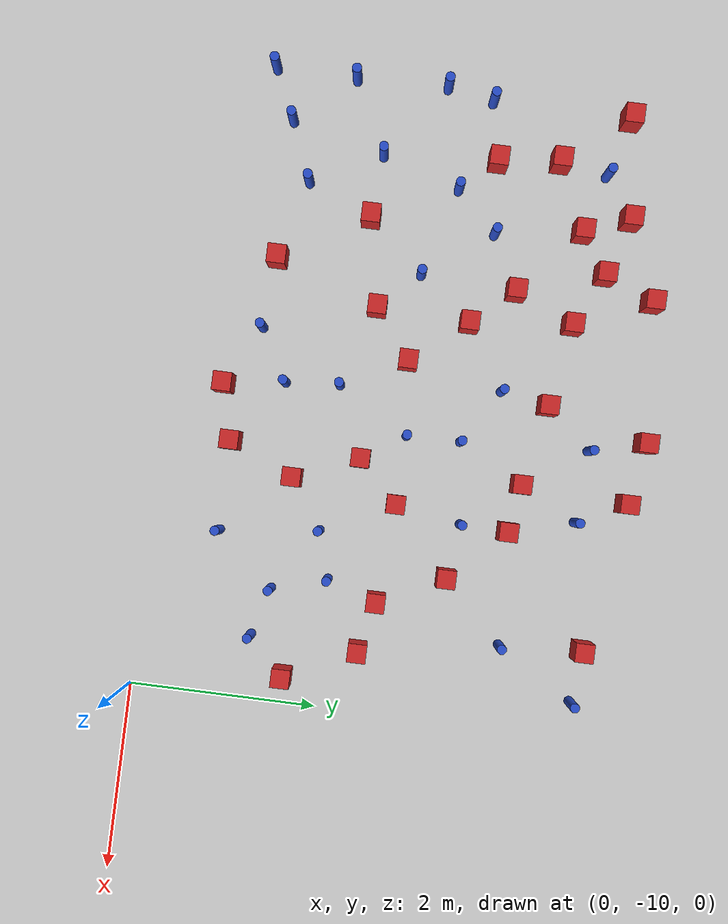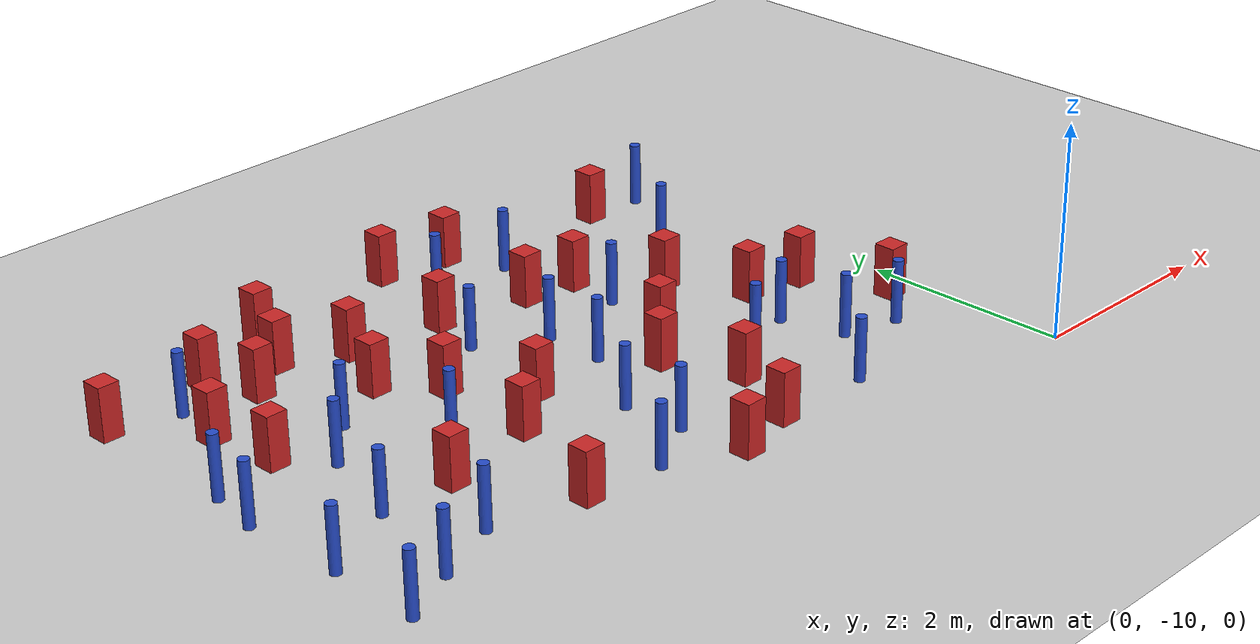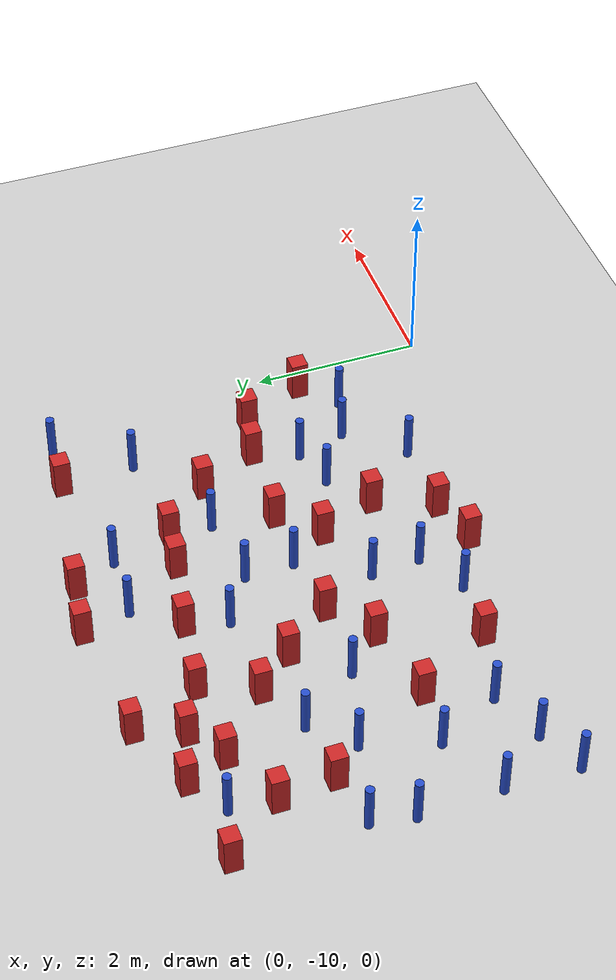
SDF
<sdf version="1.6">
 <world name="default">
  <model name="ground_plane">
   <static>1</static>
   <link name="link">
    <collision name="collision">
     <geometry><plane><normal>0 0 1</normal><size>100 100</size></plane></geometry>
     <surface><friction><ode><mu>100</mu><mu2>50</mu2></ode></friction></surface>
    </collision>
    <visual name="visual">
     <cast_shadows>0</cast_shadows>
     <geometry><plane><normal>0 0 1</normal><size>100 100</size></plane></geometry>
     <material>
      <ambient>1.0 1.0 1.0 1.0</ambient>
      <diffuse>0.8 0.8 0.8 1.0</diffuse>
      <specular>0.01 0.01 0.01 1.000000</specular>
     </material>
    </visual>
   </link>
  </model>
  <model name="square_post_obstacle0">
   <static>true</static>
   <pose>-0.304805739064 -8.38422856579 1.91545236811e-07 -7.35059704564e-06 1.12565212e-07 2.39332434364e-05</pose>
   <link name="link">
    <pose>0 0 0.25 0 -0 0</pose>
    <inertial>
     <mass>100</mass>
     <inertia>
      <ixx>0.166667</ixx>
      <ixy>0</ixy>
      <ixz>0</ixz>
      <iyy>0.166667</iyy>
      <iyz>0</iyz>
      <izz>0.166667</izz>
     </inertia>
    </inertial>
    <collision name="collision"><geometry><box><size>.2 .2 .5</size></box></geometry></collision>
    <visual name="visual">
     <geometry><box><size>.2 .2 .5</size></box></geometry>
     <material>
      <script><name>Gazebo/Red</name><uri>file://media/materials/scripts/gazebo.material</uri></script>
     </material>
    </visual>
   </link>
  </model>
  <model name="pole_obstacle5">
   <static>true</static>
   <pose>-1.21229855243 -8.62259796271 7.38925637345e-09 -8.47170692798e-08 1.24976764881e-08 -1.74513093027e-07</pose>
   <link name="link">
    <pose>0 0 0.3 0 -0 0</pose>
    <inertial>
     <mass>1</mass>
     <inertia><ixx>0.145833</ixx><ixy>0</ixy><ixz>0</ixz><iyy>0.145833</iyy><iyz>0</iyz><izz>0.125</izz></inertia>
    </inertial>
    <collision name="collision">
     <geometry><cylinder><radius>0.05</radius><length>.6</length></cylinder></geometry>
    </collision>
    <visual name="visual">
     <geometry><cylinder><radius>0.05</radius><length>.6</length></cylinder></geometry>
     <material>
      <script><name>Gazebo/Blue</name><uri>file://media/materials/scripts/gazebo.material</uri></script>
     </material>
    </visual>
   </link>
  </model>
  <model name="pole_obstacle8">
   <static>true</static>
   <pose>-1.38622224824 -8.02949995866 7.38925637345e-09 -8.47170692794e-08 1.24976764551e-08 -1.74513093044e-07</pose>
   <link name="link">
    <pose>0 0 0.3 0 -0 0</pose>
    <inertial>
     <mass>1</mass>
     <inertia><ixx>0.145833</ixx><ixy>0</ixy><ixz>0</ixz><iyy>0.145833</iyy><iyz>0</iyz><izz>0.125</izz></inertia>
    </inertial>
    <collision name="collision">
     <geometry><cylinder><radius>0.05</radius><length>.6</length></cylinder></geometry>
    </collision>
    <visual name="visual">
     <geometry><cylinder><radius>0.05</radius><length>.6</length></cylinder></geometry>
     <material>
      <script><name>Gazebo/Blue</name><uri>file://media/materials/scripts/gazebo.material</uri></script>
     </material>
    </visual>
   </link>
  </model>
  <model name="square_post_obstacle17">
   <static>true</static>
   <pose>-3.32777596773 -9.38484346378 1.91545236811e-07 -7.35059704564e-06 1.12565212e-07 2.39332434364e-05</pose>
   <link name="link">
    <pose>0 0 0.25 0 -0 0</pose>
    <inertial>
     <mass>100</mass>
     <inertia>
      <ixx>0.166667</ixx>
      <ixy>0</ixy>
      <ixz>0</ixz>
      <iyy>0.166667</iyy>
      <iyz>0</iyz>
      <izz>0.166667</izz>
     </inertia>
    </inertial>
    <collision name="collision"><geometry><box><size>.2 .2 .5</size></box></geometry></collision>
    <visual name="visual">
     <geometry><box><size>.2 .2 .5</size></box></geometry>
     <material>
      <script><name>Gazebo/Red</name><uri>file://media/materials/scripts/gazebo.material</uri></script>
     </material>
    </visual>
   </link>
  </model>
  <model name="pole_obstacle34">
   <static>true</static>
   <pose>-3.02314006411 -6.80403830484 7.38925637345e-09 -8.47170692798e-08 1.24976765033e-08 -1.74513093019e-07</pose>
   <link name="link">
    <pose>0 0 0.3 0 -0 0</pose>
    <inertial>
     <mass>1</mass>
     <inertia><ixx>0.145833</ixx><ixy>0</ixy><ixz>0</ixz><iyy>0.145833</iyy><iyz>0</iyz><izz>0.125</izz></inertia>
    </inertial>
    <collision name="collision">
     <geometry><cylinder><radius>0.05</radius><length>.6</length></cylinder></geometry>
    </collision>
    <visual name="visual">
     <geometry><cylinder><radius>0.05</radius><length>.6</length></cylinder></geometry>
     <material>
      <script><name>Gazebo/Blue</name><uri>file://media/materials/scripts/gazebo.material</uri></script>
     </material>
    </visual>
   </link>
  </model>
  <model name="square_post_obstacle29">
   <static>true</static>
   <pose>-6.1205498209 -6.12049402709 1.91545236811e-07 -7.35059704564e-06 1.12565212e-07 2.39332434364e-05</pose>
   <link name="link">
    <pose>0 0 0.25 0 -0 0</pose>
    <inertial>
     <mass>100</mass>
     <inertia>
      <ixx>0.166667</ixx>
      <ixy>0</ixy>
      <ixz>0</ixz>
      <iyy>0.166667</iyy>
      <iyz>0</iyz>
      <izz>0.166667</izz>
     </inertia>
    </inertial>
    <collision name="collision"><geometry><box><size>.2 .2 .5</size></box></geometry></collision>
    <visual name="visual">
     <geometry><box><size>.2 .2 .5</size></box></geometry>
     <material>
      <script><name>Gazebo/Red</name><uri>file://media/materials/scripts/gazebo.material</uri></script>
     </material>
    </visual>
   </link>
  </model>
  <model name="pole_obstacle41">
   <static>true</static>
   <pose>-6.20837072922 -9.00901409024 7.38925637345e-09 -8.471706928e-08 1.24976765081e-08 -1.74513093015e-07</pose>
   <link name="link">
    <pose>0 0 0.3 0 -0 0</pose>
    <inertial>
     <mass>1</mass>
     <inertia><ixx>0.145833</ixx><ixy>0</ixy><ixz>0</ixz><iyy>0.145833</iyy><iyz>0</iyz><izz>0.125</izz></inertia>
    </inertial>
    <collision name="collision">
     <geometry><cylinder><radius>0.05</radius><length>.6</length></cylinder></geometry>
    </collision>
    <visual name="visual">
     <geometry><cylinder><radius>0.05</radius><length>.6</length></cylinder></geometry>
     <material>
      <script><name>Gazebo/Blue</name><uri>file://media/materials/scripts/gazebo.material</uri></script>
     </material>
    </visual>
   </link>
  </model>
  <model name="square_post_obstacle34">
   <static>true</static>
   <pose>-4.69075412494 -6.42369297707 1.91545236811e-07 -7.35059704564e-06 1.12565212e-07 2.39332434364e-05</pose>
   <link name="link">
    <pose>0 0 0.25 0 -0 0</pose>
    <inertial>
     <mass>100</mass>
     <inertia>
      <ixx>0.166667</ixx>
      <ixy>0</ixy>
      <ixz>0</ixz>
      <iyy>0.166667</iyy>
      <iyz>0</iyz>
      <izz>0.166667</izz>
     </inertia>
    </inertial>
    <collision name="collision"><geometry><box><size>.2 .2 .5</size></box></geometry></collision>
    <visual name="visual">
     <geometry><box><size>.2 .2 .5</size></box></geometry>
     <material>
      <script><name>Gazebo/Red</name><uri>file://media/materials/scripts/gazebo.material</uri></script>
     </material>
    </visual>
   </link>
  </model>
  <model name="pole_obstacle57">
   <static>true</static>
   <pose>-6.67726402432 -6.90838742449 7.38925637345e-09 -8.47170692796e-08 1.24976764786e-08 -1.74513093032e-07</pose>
   <link name="link">
    <pose>0 0 0.3 0 -0 0</pose>
    <inertial>
     <mass>1</mass>
     <inertia><ixx>0.145833</ixx><ixy>0</ixy><ixz>0</ixz><iyy>0.145833</iyy><iyz>0</iyz><izz>0.125</izz></inertia>
    </inertial>
    <collision name="collision">
     <geometry><cylinder><radius>0.05</radius><length>.6</length></cylinder></geometry>
    </collision>
    <visual name="visual">
     <geometry><cylinder><radius>0.05</radius><length>.6</length></cylinder></geometry>
     <material>
      <script><name>Gazebo/Blue</name><uri>file://media/materials/scripts/gazebo.material</uri></script>
     </material>
    </visual>
   </link>
  </model>
  <model name="square_post_obstacle44">
   <static>true</static>
   <pose>-1.55913039652 -6.78206130796 1.91545236811e-07 -7.35059704564e-06 1.12565212e-07 2.39332434364e-05</pose>
   <link name="link">
    <pose>0 0 0.25 0 -0 0</pose>
    <inertial>
     <mass>100</mass>
     <inertia>
      <ixx>0.166667</ixx>
      <ixy>0</ixy>
      <ixz>0</ixz>
      <iyy>0.166667</iyy>
      <iyz>0</iyz>
      <izz>0.166667</izz>
     </inertia>
    </inertial>
    <collision name="collision"><geometry><box><size>.2 .2 .5</size></box></geometry></collision>
    <visual name="visual">
     <geometry><box><size>.2 .2 .5</size></box></geometry>
     <material>
      <script><name>Gazebo/Red</name><uri>file://media/materials/scripts/gazebo.material</uri></script>
     </material>
    </visual>
   </link>
  </model>
  <model name="square_post_obstacle46">
   <static>true</static>
   <pose>-4.2921654583 -6.87408539935 1.91545236811e-07 -7.35059704564e-06 1.12565212e-07 2.39332434364e-05</pose>
   <link name="link">
    <pose>0 0 0.25 0 -0 0</pose>
    <inertial>
     <mass>100</mass>
     <inertia>
      <ixx>0.166667</ixx>
      <ixy>0</ixy>
      <ixz>0</ixz>
      <iyy>0.166667</iyy>
      <iyz>0</iyz>
      <izz>0.166667</izz>
     </inertia>
    </inertial>
    <collision name="collision"><geometry><box><size>.2 .2 .5</size></box></geometry></collision>
    <visual name="visual">
     <geometry><box><size>.2 .2 .5</size></box></geometry>
     <material>
      <script><name>Gazebo/Red</name><uri>file://media/materials/scripts/gazebo.material</uri></script>
     </material>
    </visual>
   </link>
  </model>
  <model name="pole_obstacle64">
   <static>true</static>
   <pose>-3.01185786647 -7.38417080821 7.38925637345e-09 -8.47170692794e-08 1.24976764468e-08 -1.7451309304e-07</pose>
   <link name="link">
    <pose>0 0 0.3 0 -0 0</pose>
    <inertial>
     <mass>1</mass>
     <inertia><ixx>0.145833</ixx><ixy>0</ixy><ixz>0</ixz><iyy>0.145833</iyy><iyz>0</iyz><izz>0.125</izz></inertia>
    </inertial>
    <collision name="collision">
     <geometry><cylinder><radius>0.05</radius><length>.6</length></cylinder></geometry>
    </collision>
    <visual name="visual">
     <geometry><cylinder><radius>0.05</radius><length>.6</length></cylinder></geometry>
     <material>
      <script><name>Gazebo/Blue</name><uri>file://media/materials/scripts/gazebo.material</uri></script>
     </material>
    </visual>
   </link>
  </model>
  <model name="pole_obstacle65">
   <static>true</static>
   <pose>-4.74315457048 -7.44499683405 7.38925637345e-09 -8.47170692796e-08 1.24976764786e-08 -1.74513093032e-07</pose>
   <link name="link">
    <pose>0 0 0.3 0 -0 0</pose>
    <inertial>
     <mass>1</mass>
     <inertia><ixx>0.145833</ixx><ixy>0</ixy><ixz>0</ixz><iyy>0.145833</iyy><iyz>0</iyz><izz>0.125</izz></inertia>
    </inertial>
    <collision name="collision">
     <geometry><cylinder><radius>0.05</radius><length>.6</length></cylinder></geometry>
    </collision>
    <visual name="visual">
     <geometry><cylinder><radius>0.05</radius><length>.6</length></cylinder></geometry>
     <material>
      <script><name>Gazebo/Blue</name><uri>file://media/materials/scripts/gazebo.material</uri></script>
     </material>
    </visual>
   </link>
  </model>
  <model name="square_post_obstacle56">
   <static>true</static>
   <pose>-4.40652172445 -5.78115040071 1.91545236811e-07 -7.35059704564e-06 1.12565212e-07 2.39332434364e-05</pose>
   <link name="link">
    <pose>0 0 0.25 0 -0 0</pose>
    <inertial>
     <mass>100</mass>
     <inertia>
      <ixx>0.166667</ixx>
      <ixy>0</ixy>
      <ixz>0</ixz>
      <iyy>0.166667</iyy>
      <iyz>0</iyz>
      <izz>0.166667</izz>
     </inertia>
    </inertial>
    <collision name="collision"><geometry><box><size>.2 .2 .5</size></box></geometry></collision>
    <visual name="visual">
     <geometry><box><size>.2 .2 .5</size></box></geometry>
     <material>
      <script><name>Gazebo/Red</name><uri>file://media/materials/scripts/gazebo.material</uri></script>
     </material>
    </visual>
   </link>
  </model>
  <model name="pole_obstacle76">
   <static>true</static>
   <pose>-3.09667049101 -5.42747583515 7.38925637345e-09 -8.47170692794e-08 1.24976764468e-08 -1.7451309304e-07</pose>
   <link name="link">
    <pose>0 0 0.3 0 -0 0</pose>
    <inertial>
     <mass>1</mass>
     <inertia><ixx>0.145833</ixx><ixy>0</ixy><ixz>0</ixz><iyy>0.145833</iyy><iyz>0</iyz><izz>0.125</izz></inertia>
    </inertial>
    <collision name="collision">
     <geometry><cylinder><radius>0.05</radius><length>.6</length></cylinder></geometry>
    </collision>
    <visual name="visual">
     <geometry><cylinder><radius>0.05</radius><length>.6</length></cylinder></geometry>
     <material>
      <script><name>Gazebo/Blue</name><uri>file://media/materials/scripts/gazebo.material</uri></script>
     </material>
    </visual>
   </link>
  </model>
  <model name="pole_obstacle77">
   <static>true</static>
   <pose>-6.73528693466 -8.38498321351 7.38925637345e-09 -8.471706928e-08 1.24976765081e-08 -1.74513093015e-07</pose>
   <link name="link">
    <pose>0 0 0.3 0 -0 0</pose>
    <inertial>
     <mass>1</mass>
     <inertia><ixx>0.145833</ixx><ixy>0</ixy><ixz>0</ixz><iyy>0.145833</iyy><iyz>0</iyz><izz>0.125</izz></inertia>
    </inertial>
    <collision name="collision">
     <geometry><cylinder><radius>0.05</radius><length>.6</length></cylinder></geometry>
    </collision>
    <visual name="visual">
     <geometry><cylinder><radius>0.05</radius><length>.6</length></cylinder></geometry>
     <material>
      <script><name>Gazebo/Blue</name><uri>file://media/materials/scripts/gazebo.material</uri></script>
     </material>
    </visual>
   </link>
  </model>
  <model name="pole_obstacle85">
   <static>true</static>
   <pose>-2.14509883164 -6.69484938624 7.38925637345e-09 -8.47170692798e-08 1.24976765033e-08 -1.74513093019e-07</pose>
   <link name="link">
    <pose>0 0 0.3 0 -0 0</pose>
    <inertial>
     <mass>1</mass>
     <inertia><ixx>0.145833</ixx><ixy>0</ixy><ixz>0</ixz><iyy>0.145833</iyy><iyz>0</iyz><izz>0.125</izz></inertia>
    </inertial>
    <collision name="collision">
     <geometry><cylinder><radius>0.05</radius><length>.6</length></cylinder></geometry>
    </collision>
    <visual name="visual">
     <geometry><cylinder><radius>0.05</radius><length>.6</length></cylinder></geometry>
     <material>
      <script><name>Gazebo/Blue</name><uri>file://media/materials/scripts/gazebo.material</uri></script>
     </material>
    </visual>
   </link>
  </model>
  <model name="square_post_obstacle81">
   <static>true</static>
   <pose>-5.59921674762 -5.3061103407 1.91545236811e-07 -7.35059704564e-06 1.12565212e-07 2.39332434364e-05</pose>
   <link name="link">
    <pose>0 0 0.25 0 -0 0</pose>
    <inertial>
     <mass>100</mass>
     <inertia>
      <ixx>0.166667</ixx>
      <ixy>0</ixy>
      <ixz>0</ixz>
      <iyy>0.166667</iyy>
      <iyz>0</iyz>
      <izz>0.166667</izz>
     </inertia>
    </inertial>
    <collision name="collision"><geometry><box><size>.2 .2 .5</size></box></geometry></collision>
    <visual name="visual">
     <geometry><box><size>.2 .2 .5</size></box></geometry>
     <material>
      <script><name>Gazebo/Red</name><uri>file://media/materials/scripts/gazebo.material</uri></script>
     </material>
    </visual>
   </link>
  </model>
  <model name="square_post_obstacle83">
   <static>true</static>
   <pose>-0.973067561229 -5.2447098263 1.91545236811e-07 -7.35059704564e-06 1.12565212e-07 2.39332434364e-05</pose>
   <link name="link">
    <pose>0 0 0.25 0 -0 0</pose>
    <inertial>
     <mass>100</mass>
     <inertia>
      <ixx>0.166667</ixx>
      <ixy>0</ixy>
      <ixz>0</ixz>
      <iyy>0.166667</iyy>
      <iyz>0</iyz>
      <izz>0.166667</izz>
     </inertia>
    </inertial>
    <collision name="collision"><geometry><box><size>.2 .2 .5</size></box></geometry></collision>
    <visual name="visual">
     <geometry><box><size>.2 .2 .5</size></box></geometry>
     <material>
      <script><name>Gazebo/Red</name><uri>file://media/materials/scripts/gazebo.material</uri></script>
     </material>
    </visual>
   </link>
  </model>
  <model name="square_post_obstacle84">
   <static>true</static>
   <pose>-4.75358061715 -4.96536392157 1.91545236811e-07 -7.35059704564e-06 1.12565212e-07 2.39332434364e-05</pose>
   <link name="link">
    <pose>0 0 0.25 0 -0 0</pose>
    <inertial>
     <mass>100</mass>
     <inertia>
      <ixx>0.166667</ixx>
      <ixy>0</ixy>
      <ixz>0</ixz>
      <iyy>0.166667</iyy>
      <iyz>0</iyz>
      <izz>0.166667</izz>
     </inertia>
    </inertial>
    <collision name="collision"><geometry><box><size>.2 .2 .5</size></box></geometry></collision>
    <visual name="visual">
     <geometry><box><size>.2 .2 .5</size></box></geometry>
     <material>
      <script><name>Gazebo/Red</name><uri>file://media/materials/scripts/gazebo.material</uri></script>
     </material>
    </visual>
   </link>
  </model>
  <model name="pole_obstacle91">
   <static>true</static>
   <pose>-0.912121935433 -6.12293342427 7.38925637345e-09 -8.471706928e-08 1.24976765086e-08 -1.74513093015e-07</pose>
   <link name="link">
    <pose>0 0 0.3 0 -0 0</pose>
    <inertial>
     <mass>1</mass>
     <inertia><ixx>0.145833</ixx><ixy>0</ixy><ixz>0</ixz><iyy>0.145833</iyy><iyz>0</iyz><izz>0.125</izz></inertia>
    </inertial>
    <collision name="collision">
     <geometry><cylinder><radius>0.05</radius><length>.6</length></cylinder></geometry>
    </collision>
    <visual name="visual">
     <geometry><cylinder><radius>0.05</radius><length>.6</length></cylinder></geometry>
     <material>
      <script><name>Gazebo/Blue</name><uri>file://media/materials/scripts/gazebo.material</uri></script>
     </material>
    </visual>
   </link>
  </model>
  <model name="square_post_obstacle91">
   <static>true</static>
   <pose>-1.21434277129 -7.49113162725 1.91545236811e-07 -7.35059704564e-06 1.12565212e-07 2.39332434364e-05</pose>
   <link name="link">
    <pose>0 0 0.25 0 -0 0</pose>
    <inertial>
     <mass>100</mass>
     <inertia>
      <ixx>0.166667</ixx>
      <ixy>0</ixy>
      <ixz>0</ixz>
      <iyy>0.166667</iyy>
      <iyz>0</iyz>
      <izz>0.166667</izz>
     </inertia>
    </inertial>
    <collision name="collision"><geometry><box><size>.2 .2 .5</size></box></geometry></collision>
    <visual name="visual">
     <geometry><box><size>.2 .2 .5</size></box></geometry>
     <material>
      <script><name>Gazebo/Red</name><uri>file://media/materials/scripts/gazebo.material</uri></script>
     </material>
    </visual>
   </link>
  </model>
  <model name="pole_obstacle100">
   <static>true</static>
   <pose>-0.691836107508 -8.77451505304 7.38925637345e-09 -8.47170692797e-08 1.249767648e-08 -1.74513093032e-07</pose>
   <link name="link">
    <pose>0 0 0.3 0 -0 0</pose>
    <inertial>
     <mass>1</mass>
     <inertia><ixx>0.145833</ixx><ixy>0</ixy><ixz>0</ixz><iyy>0.145833</iyy><iyz>0</iyz><izz>0.125</izz></inertia>
    </inertial>
    <collision name="collision">
     <geometry><cylinder><radius>0.05</radius><length>.6</length></cylinder></geometry>
    </collision>
    <visual name="visual">
     <geometry><cylinder><radius>0.05</radius><length>.6</length></cylinder></geometry>
     <material>
      <script><name>Gazebo/Blue</name><uri>file://media/materials/scripts/gazebo.material</uri></script>
     </material>
    </visual>
   </link>
  </model>
  <model name="pole_obstacle104">
   <static>true</static>
   <pose>-5.96157035018 -8.00373201339 7.38925637345e-09 -8.47170692796e-08 1.24976764734e-08 -1.74513093037e-07</pose>
   <link name="link">
    <pose>0 0 0.3 0 -0 0</pose>
    <inertial>
     <mass>1</mass>
     <inertia><ixx>0.145833</ixx><ixy>0</ixy><ixz>0</ixz><iyy>0.145833</iyy><iyz>0</iyz><izz>0.125</izz></inertia>
    </inertial>
    <collision name="collision">
     <geometry><cylinder><radius>0.05</radius><length>.6</length></cylinder></geometry>
    </collision>
    <visual name="visual">
     <geometry><cylinder><radius>0.05</radius><length>.6</length></cylinder></geometry>
     <material>
      <script><name>Gazebo/Blue</name><uri>file://media/materials/scripts/gazebo.material</uri></script>
     </material>
    </visual>
   </link>
  </model>
  <model name="square_post_obstacle104">
   <static>true</static>
   <pose>-4.97908535442 -5.50438180248 1.91545236811e-07 -7.35059704564e-06 1.12565212e-07 2.39332434364e-05</pose>
   <link name="link">
    <pose>0 0 0.25 0 -0 0</pose>
    <inertial>
     <mass>100</mass>
     <inertia>
      <ixx>0.166667</ixx>
      <ixy>0</ixy>
      <ixz>0</ixz>
      <iyy>0.166667</iyy>
      <iyz>0</iyz>
      <izz>0.166667</izz>
     </inertia>
    </inertial>
    <collision name="collision"><geometry><box><size>.2 .2 .5</size></box></geometry></collision>
    <visual name="visual">
     <geometry><box><size>.2 .2 .5</size></box></geometry>
     <material>
      <script><name>Gazebo/Red</name><uri>file://media/materials/scripts/gazebo.material</uri></script>
     </material>
    </visual>
   </link>
  </model>
  <model name="pole_obstacle111">
   <static>true</static>
   <pose>-2.31986346391 -5.47759158698 7.38925637345e-09 -8.47170692798e-08 1.24976765033e-08 -1.74513093019e-07</pose>
   <link name="link">
    <pose>0 0 0.3 0 -0 0</pose>
    <inertial>
     <mass>1</mass>
     <inertia><ixx>0.145833</ixx><ixy>0</ixy><ixz>0</ixz><iyy>0.145833</iyy><iyz>0</iyz><izz>0.125</izz></inertia>
    </inertial>
    <collision name="collision">
     <geometry><cylinder><radius>0.05</radius><length>.6</length></cylinder></geometry>
    </collision>
    <visual name="visual">
     <geometry><cylinder><radius>0.05</radius><length>.6</length></cylinder></geometry>
     <material>
      <script><name>Gazebo/Blue</name><uri>file://media/materials/scripts/gazebo.material</uri></script>
     </material>
    </visual>
   </link>
  </model>
  <model name="square_post_obstacle108">
   <static>true</static>
   <pose>-2.58119444353 -4.96531029173 1.91545236811e-07 -7.35059704564e-06 1.12565212e-07 2.39332434364e-05</pose>
   <link name="link">
    <pose>0 0 0.25 0 -0 0</pose>
    <inertial>
     <mass>100</mass>
     <inertia>
      <ixx>0.166667</ixx>
      <ixy>0</ixy>
      <ixz>0</ixz>
      <iyy>0.166667</iyy>
      <iyz>0</iyz>
      <izz>0.166667</izz>
     </inertia>
    </inertial>
    <collision name="collision"><geometry><box><size>.2 .2 .5</size></box></geometry></collision>
    <visual name="visual">
     <geometry><box><size>.2 .2 .5</size></box></geometry>
     <material>
      <script><name>Gazebo/Red</name><uri>file://media/materials/scripts/gazebo.material</uri></script>
     </material>
    </visual>
   </link>
  </model>
  <model name="square_post_obstacle110">
   <static>true</static>
   <pose>-5.28202369122 -8.05188513143 1.91545236811e-07 -7.35059704564e-06 1.12565212e-07 2.39332434364e-05</pose>
   <link name="link">
    <pose>0 0 0.25 0 -0 0</pose>
    <inertial>
     <mass>100</mass>
     <inertia>
      <ixx>0.166667</ixx>
      <ixy>0</ixy>
      <ixz>0</ixz>
      <iyy>0.166667</iyy>
      <iyz>0</iyz>
      <izz>0.166667</izz>
     </inertia>
    </inertial>
    <collision name="collision"><geometry><box><size>.2 .2 .5</size></box></geometry></collision>
    <visual name="visual">
     <geometry><box><size>.2 .2 .5</size></box></geometry>
     <material>
      <script><name>Gazebo/Red</name><uri>file://media/materials/scripts/gazebo.material</uri></script>
     </material>
    </visual>
   </link>
  </model>
  <model name="square_post_obstacle111">
   <static>true</static>
   <pose>-3.80919267225 -7.46989595525 1.91545236811e-07 -7.35059704564e-06 1.12565212e-07 2.39332434364e-05</pose>
   <link name="link">
    <pose>0 0 0.25 0 -0 0</pose>
    <inertial>
     <mass>100</mass>
     <inertia>
      <ixx>0.166667</ixx>
      <ixy>0</ixy>
      <ixz>0</ixz>
      <iyy>0.166667</iyy>
      <iyz>0</iyz>
      <izz>0.166667</izz>
     </inertia>
    </inertial>
    <collision name="collision"><geometry><box><size>.2 .2 .5</size></box></geometry></collision>
    <visual name="visual">
     <geometry><box><size>.2 .2 .5</size></box></geometry>
     <material>
      <script><name>Gazebo/Red</name><uri>file://media/materials/scripts/gazebo.material</uri></script>
     </material>
    </visual>
   </link>
  </model>
  <model name="square_post_obstacle114">
   <static>true</static>
   <pose>-2.42255588228 -8.53755496915 1.91545236811e-07 -7.35059704564e-06 1.12565212e-07 2.39332434364e-05</pose>
   <link name="link">
    <pose>0 0 0.25 0 -0 0</pose>
    <inertial>
     <mass>100</mass>
     <inertia>
      <ixx>0.166667</ixx>
      <ixy>0</ixy>
      <ixz>0</ixz>
      <iyy>0.166667</iyy>
      <iyz>0</iyz>
      <izz>0.166667</izz>
     </inertia>
    </inertial>
    <collision name="collision"><geometry><box><size>.2 .2 .5</size></box></geometry></collision>
    <visual name="visual">
     <geometry><box><size>.2 .2 .5</size></box></geometry>
     <material>
      <script><name>Gazebo/Red</name><uri>file://media/materials/scripts/gazebo.material</uri></script>
     </material>
    </visual>
   </link>
  </model>
  <model name="square_post_obstacle119">
   <static>true</static>
   <pose>-2.13221254624 -6.19329971037 1.91545236811e-07 -7.35059704564e-06 1.12565212e-07 2.39332434364e-05</pose>
   <link name="link">
    <pose>0 0 0.25 0 -0 0</pose>
    <inertial>
     <mass>100</mass>
     <inertia>
      <ixx>0.166667</ixx>
      <ixy>0</ixy>
      <ixz>0</ixz>
      <iyy>0.166667</iyy>
      <iyz>0</iyz>
      <izz>0.166667</izz>
     </inertia>
    </inertial>
    <collision name="collision"><geometry><box><size>.2 .2 .5</size></box></geometry></collision>
    <visual name="visual">
     <geometry><box><size>.2 .2 .5</size></box></geometry>
     <material>
      <script><name>Gazebo/Red</name><uri>file://media/materials/scripts/gazebo.material</uri></script>
     </material>
    </visual>
   </link>
  </model>
  <model name="pole_obstacle125">
   <static>true</static>
   <pose>-5.57880626684 -8.75682501945 7.38925637345e-09 -8.471706928e-08 1.24976765081e-08 -1.74513093015e-07</pose>
   <link name="link">
    <pose>0 0 0.3 0 -0 0</pose>
    <inertial>
     <mass>1</mass>
     <inertia><ixx>0.145833</ixx><ixy>0</ixy><ixz>0</ixz><iyy>0.145833</iyy><iyz>0</iyz><izz>0.125</izz></inertia>
    </inertial>
    <collision name="collision">
     <geometry><cylinder><radius>0.05</radius><length>.6</length></cylinder></geometry>
    </collision>
    <visual name="visual">
     <geometry><cylinder><radius>0.05</radius><length>.6</length></cylinder></geometry>
     <material>
      <script><name>Gazebo/Blue</name><uri>file://media/materials/scripts/gazebo.material</uri></script>
     </material>
    </visual>
   </link>
  </model>
  <model name="pole_obstacle130">
   <static>true</static>
   <pose>-5.69802800564 -7.16044968174 7.38925637345e-09 -8.47170692796e-08 1.24976764786e-08 -1.74513093032e-07</pose>
   <link name="link">
    <pose>0 0 0.3 0 -0 0</pose>
    <inertial>
     <mass>1</mass>
     <inertia><ixx>0.145833</ixx><ixy>0</ixy><ixz>0</ixz><iyy>0.145833</iyy><iyz>0</iyz><izz>0.125</izz></inertia>
    </inertial>
    <collision name="collision">
     <geometry><cylinder><radius>0.05</radius><length>.6</length></cylinder></geometry>
    </collision>
    <visual name="visual">
     <geometry><cylinder><radius>0.05</radius><length>.6</length></cylinder></geometry>
     <material>
      <script><name>Gazebo/Blue</name><uri>file://media/materials/scripts/gazebo.material</uri></script>
     </material>
    </visual>
   </link>
  </model>
  <model name="pole_obstacle132">
   <static>true</static>
   <pose>-3.46489108594 -8.15874765975 7.38925637345e-09 -8.47170692799e-08 1.24976765012e-08 -1.74513093021e-07</pose>
   <link name="link">
    <pose>0 0 0.3 0 -0 0</pose>
    <inertial>
     <mass>1</mass>
     <inertia><ixx>0.145833</ixx><ixy>0</ixy><ixz>0</ixz><iyy>0.145833</iyy><iyz>0</iyz><izz>0.125</izz></inertia>
    </inertial>
    <collision name="collision">
     <geometry><cylinder><radius>0.05</radius><length>.6</length></cylinder></geometry>
    </collision>
    <visual name="visual">
     <geometry><cylinder><radius>0.05</radius><length>.6</length></cylinder></geometry>
     <material>
      <script><name>Gazebo/Blue</name><uri>file://media/materials/scripts/gazebo.material</uri></script>
     </material>
    </visual>
   </link>
  </model>
  <model name="square_post_obstacle130">
   <static>true</static>
   <pose>-2.73151922312 -9.2345014708 1.91545236811e-07 -7.35059704564e-06 1.12565212e-07 2.39332434364e-05</pose>
   <link name="link">
    <pose>0 0 0.25 0 -0 0</pose>
    <inertial>
     <mass>100</mass>
     <inertia>
      <ixx>0.166667</ixx>
      <ixy>0</ixy>
      <ixz>0</ixz>
      <iyy>0.166667</iyy>
      <iyz>0</iyz>
      <izz>0.166667</izz>
     </inertia>
    </inertial>
    <collision name="collision"><geometry><box><size>.2 .2 .5</size></box></geometry></collision>
    <visual name="visual">
     <geometry><box><size>.2 .2 .5</size></box></geometry>
     <material>
      <script><name>Gazebo/Red</name><uri>file://media/materials/scripts/gazebo.material</uri></script>
     </material>
    </visual>
   </link>
  </model>
  <model name="square_post_obstacle133">
   <static>true</static>
   <pose>-4.72840973819 -8.98509079499 1.91545236811e-07 -7.35059704564e-06 1.12565212e-07 2.39332434364e-05</pose>
   <link name="link">
    <pose>0 0 0.25 0 -0 0</pose>
    <inertial>
     <mass>100</mass>
     <inertia>
      <ixx>0.166667</ixx>
      <ixy>0</ixy>
      <ixz>0</ixz>
      <iyy>0.166667</iyy>
      <iyz>0</iyz>
      <izz>0.166667</izz>
     </inertia>
    </inertial>
    <collision name="collision"><geometry><box><size>.2 .2 .5</size></box></geometry></collision>
    <visual name="visual">
     <geometry><box><size>.2 .2 .5</size></box></geometry>
     <material>
      <script><name>Gazebo/Red</name><uri>file://media/materials/scripts/gazebo.material</uri></script>
     </material>
    </visual>
   </link>
  </model>
  <model name="pole_obstacle138">
   <static>true</static>
   <pose>-1.76531018567 -9.24954923419 7.38925637345e-09 -8.47170692798e-08 1.24976764881e-08 -1.74513093027e-07</pose>
   <link name="link">
    <pose>0 0 0.3 0 -0 0</pose>
    <inertial>
     <mass>1</mass>
     <inertia><ixx>0.145833</ixx><ixy>0</ixy><ixz>0</ixz><iyy>0.145833</iyy><iyz>0</iyz><izz>0.125</izz></inertia>
    </inertial>
    <collision name="collision">
     <geometry><cylinder><radius>0.05</radius><length>.6</length></cylinder></geometry>
    </collision>
    <visual name="visual">
     <geometry><cylinder><radius>0.05</radius><length>.6</length></cylinder></geometry>
     <material>
      <script><name>Gazebo/Blue</name><uri>file://media/materials/scripts/gazebo.material</uri></script>
     </material>
    </visual>
   </link>
  </model>
  <model name="pole_obstacle141">
   <static>true</static>
   <pose>-1.89327879414 -8.18304638399 7.38925637345e-09 -8.47170692798e-08 1.24976764881e-08 -1.74513093027e-07</pose>
   <link name="link">
    <pose>0 0 0.3 0 -0 0</pose>
    <inertial>
     <mass>1</mass>
     <inertia><ixx>0.145833</ixx><ixy>0</ixy><ixz>0</ixz><iyy>0.145833</iyy><iyz>0</iyz><izz>0.125</izz></inertia>
    </inertial>
    <collision name="collision">
     <geometry><cylinder><radius>0.05</radius><length>.6</length></cylinder></geometry>
    </collision>
    <visual name="visual">
     <geometry><cylinder><radius>0.05</radius><length>.6</length></cylinder></geometry>
     <material>
      <script><name>Gazebo/Blue</name><uri>file://media/materials/scripts/gazebo.material</uri></script>
     </material>
    </visual>
   </link>
  </model>
  <model name="square_post_obstacle144">
   <static>true</static>
   <pose>-3.51649169345 -5.93203399024 1.91545236811e-07 -7.35059704564e-06 1.12565212e-07 2.39332434364e-05</pose>
   <link name="link">
    <pose>0 0 0.25 0 -0 0</pose>
    <inertial>
     <mass>100</mass>
     <inertia>
      <ixx>0.166667</ixx>
      <ixy>0</ixy>
      <ixz>0</ixz>
      <iyy>0.166667</iyy>
      <iyz>0</iyz>
      <izz>0.166667</izz>
     </inertia>
    </inertial>
    <collision name="collision"><geometry><box><size>.2 .2 .5</size></box></geometry></collision>
    <visual name="visual">
     <geometry><box><size>.2 .2 .5</size></box></geometry>
     <material>
      <script><name>Gazebo/Red</name><uri>file://media/materials/scripts/gazebo.material</uri></script>
     </material>
    </visual>
   </link>
  </model>
  <model name="square_post_obstacle148">
   <static>true</static>
   <pose>-0.670775070512 -7.61974485783 1.91545236811e-07 -7.35059704564e-06 1.12565212e-07 2.39332434364e-05</pose>
   <link name="link">
    <pose>0 0 0.25 0 -0 0</pose>
    <inertial>
     <mass>100</mass>
     <inertia>
      <ixx>0.166667</ixx>
      <ixy>0</ixy>
      <ixz>0</ixz>
      <iyy>0.166667</iyy>
      <iyz>0</iyz>
      <izz>0.166667</izz>
     </inertia>
    </inertial>
    <collision name="collision"><geometry><box><size>.2 .2 .5</size></box></geometry></collision>
    <visual name="visual">
     <geometry><box><size>.2 .2 .5</size></box></geometry>
     <material>
      <script><name>Gazebo/Red</name><uri>file://media/materials/scripts/gazebo.material</uri></script>
     </material>
    </visual>
   </link>
  </model>
  <model name="square_post_obstacle151">
   <static>true</static>
   <pose>-3.24740965193 -4.84766312868 1.91545236811e-07 -7.35059704564e-06 1.12565212e-07 2.39332434364e-05</pose>
   <link name="link">
    <pose>0 0 0.25 0 -0 0</pose>
    <inertial>
     <mass>100</mass>
     <inertia>
      <ixx>0.166667</ixx>
      <ixy>0</ixy>
      <ixz>0</ixz>
      <iyy>0.166667</iyy>
      <iyz>0</iyz>
      <izz>0.166667</izz>
     </inertia>
    </inertial>
    <collision name="collision"><geometry><box><size>.2 .2 .5</size></box></geometry></collision>
    <visual name="visual">
     <geometry><box><size>.2 .2 .5</size></box></geometry>
     <material>
      <script><name>Gazebo/Red</name><uri>file://media/materials/scripts/gazebo.material</uri></script>
     </material>
    </visual>
   </link>
  </model>
  <model name="pole_obstacle159">
   <static>true</static>
   <pose>-0.404405467358 -5.29063668413 7.38925637345e-09 -8.471706928e-08 1.24976765079e-08 -1.74513093015e-07</pose>
   <link name="link">
    <pose>0 0 0.3 0 -0 0</pose>
    <inertial>
     <mass>1</mass>
     <inertia><ixx>0.145833</ixx><ixy>0</ixy><ixz>0</ixz><iyy>0.145833</iyy><iyz>0</iyz><izz>0.125</izz></inertia>
    </inertial>
    <collision name="collision">
     <geometry><cylinder><radius>0.05</radius><length>.6</length></cylinder></geometry>
    </collision>
    <visual name="visual">
     <geometry><cylinder><radius>0.05</radius><length>.6</length></cylinder></geometry>
     <material>
      <script><name>Gazebo/Blue</name><uri>file://media/materials/scripts/gazebo.material</uri></script>
     </material>
    </visual>
   </link>
  </model>
  <model name="square_post_obstacle161">
   <static>true</static>
   <pose>-2.27239403152 -7.40927220718 1.91545236811e-07 -7.35059704564e-06 1.12565212e-07 2.39332434364e-05</pose>
   <link name="link">
    <pose>0 0 0.25 0 -0 0</pose>
    <inertial>
     <mass>100</mass>
     <inertia>
      <ixx>0.166667</ixx>
      <ixy>0</ixy>
      <ixz>0</ixz>
      <iyy>0.166667</iyy>
      <iyz>0</iyz>
      <izz>0.166667</izz>
     </inertia>
    </inertial>
    <collision name="collision"><geometry><box><size>.2 .2 .5</size></box></geometry></collision>
    <visual name="visual">
     <geometry><box><size>.2 .2 .5</size></box></geometry>
     <material>
      <script><name>Gazebo/Red</name><uri>file://media/materials/scripts/gazebo.material</uri></script>
     </material>
    </visual>
   </link>
  </model>
  <model name="pole_obstacle167">
   <static>true</static>
   <pose>-3.97468227958 -9.05649502182 7.38925637345e-09 -8.47170692799e-08 1.24976765043e-08 -1.74513093017e-07</pose>
   <link name="link">
    <pose>0 0 0.3 0 -0 0</pose>
    <inertial>
     <mass>1</mass>
     <inertia><ixx>0.145833</ixx><ixy>0</ixy><ixz>0</ixz><iyy>0.145833</iyy><iyz>0</iyz><izz>0.125</izz></inertia>
    </inertial>
    <collision name="collision">
     <geometry><cylinder><radius>0.05</radius><length>.6</length></cylinder></geometry>
    </collision>
    <visual name="visual">
     <geometry><cylinder><radius>0.05</radius><length>.6</length></cylinder></geometry>
     <material>
      <script><name>Gazebo/Blue</name><uri>file://media/materials/scripts/gazebo.material</uri></script>
     </material>
    </visual>
   </link>
  </model>
  <model name="pole_obstacle168">
   <static>true</static>
   <pose>-3.41793236625 -8.74380618794 7.38925637345e-09 -8.47170692793e-08 1.24976764408e-08 -1.74513093041e-07</pose>
   <link name="link">
    <pose>0 0 0.3 0 -0 0</pose>
    <inertial>
     <mass>1</mass>
     <inertia><ixx>0.145833</ixx><ixy>0</ixy><ixz>0</ixz><iyy>0.145833</iyy><iyz>0</iyz><izz>0.125</izz></inertia>
    </inertial>
    <collision name="collision">
     <geometry><cylinder><radius>0.05</radius><length>.6</length></cylinder></geometry>
    </collision>
    <visual name="visual">
     <geometry><cylinder><radius>0.05</radius><length>.6</length></cylinder></geometry>
     <material>
      <script><name>Gazebo/Blue</name><uri>file://media/materials/scripts/gazebo.material</uri></script>
     </material>
    </visual>
   </link>
  </model>
  <model name="square_post_obstacle165">
   <static>true</static>
   <pose>-2.71137134676 -7.84042423185 1.91545236811e-07 -7.35059704564e-06 1.12565212e-07 2.39332434364e-05</pose>
   <link name="link">
    <pose>0 0 0.25 0 -0 0</pose>
    <inertial>
     <mass>100</mass>
     <inertia>
      <ixx>0.166667</ixx>
      <ixy>0</ixy>
      <ixz>0</ixz>
      <iyy>0.166667</iyy>
      <iyz>0</iyz>
      <izz>0.166667</izz>
     </inertia>
    </inertial>
    <collision name="collision"><geometry><box><size>.2 .2 .5</size></box></geometry></collision>
    <visual name="visual">
     <geometry><box><size>.2 .2 .5</size></box></geometry>
     <material>
      <script><name>Gazebo/Red</name><uri>file://media/materials/scripts/gazebo.material</uri></script>
     </material>
    </visual>
   </link>
  </model>
  <model name="pole_obstacle176">
   <static>true</static>
   <pose>-6.04104093301 -5.60451998597 7.38925637345e-09 -8.47170692796e-08 1.24976764786e-08 -1.74513093032e-07</pose>
   <link name="link">
    <pose>0 0 0.3 0 -0 0</pose>
    <inertial>
     <mass>1</mass>
     <inertia><ixx>0.145833</ixx><ixy>0</ixy><ixz>0</ixz><iyy>0.145833</iyy><iyz>0</iyz><izz>0.125</izz></inertia>
    </inertial>
    <collision name="collision">
     <geometry><cylinder><radius>0.05</radius><length>.6</length></cylinder></geometry>
    </collision>
    <visual name="visual">
     <geometry><cylinder><radius>0.05</radius><length>.6</length></cylinder></geometry>
     <material>
      <script><name>Gazebo/Blue</name><uri>file://media/materials/scripts/gazebo.material</uri></script>
     </material>
    </visual>
   </link>
  </model>
  <model name="square_post_obstacle189">
   <static>true</static>
   <pose>-4.3370620828 -7.86618968475 1.91545236811e-07 -7.35059704564e-06 1.12565212e-07 2.39332434364e-05</pose>
   <link name="link">
    <pose>0 0 0.25 0 -0 0</pose>
    <inertial>
     <mass>100</mass>
     <inertia>
      <ixx>0.166667</ixx>
      <ixy>0</ixy>
      <ixz>0</ixz>
      <iyy>0.166667</iyy>
      <iyz>0</iyz>
      <izz>0.166667</izz>
     </inertia>
    </inertial>
    <collision name="collision"><geometry><box><size>.2 .2 .5</size></box></geometry></collision>
    <visual name="visual">
     <geometry><box><size>.2 .2 .5</size></box></geometry>
     <material>
      <script><name>Gazebo/Red</name><uri>file://media/materials/scripts/gazebo.material</uri></script>
     </material>
    </visual>
   </link>
  </model>
  <model name="square_post_obstacle194">
   <static>true</static>
   <pose>-2.64807344004 -6.1121956953 1.91545236811e-07 -7.35059704564e-06 1.12565212e-07 2.39332434364e-05</pose>
   <link name="link">
    <pose>0 0 0.25 0 -0 0</pose>
    <inertial>
     <mass>100</mass>
     <inertia>
      <ixx>0.166667</ixx>
      <ixy>0</ixy>
      <ixz>0</ixz>
      <iyy>0.166667</iyy>
      <iyz>0</iyz>
      <izz>0.166667</izz>
     </inertia>
    </inertial>
    <collision name="collision"><geometry><box><size>.2 .2 .5</size></box></geometry></collision>
    <visual name="visual">
     <geometry><box><size>.2 .2 .5</size></box></geometry>
     <material>
      <script><name>Gazebo/Red</name><uri>file://media/materials/scripts/gazebo.material</uri></script>
     </material>
    </visual>
   </link>
  </model>
  <model name="pole_obstacle192">
   <static>true</static>
   <pose>-3.61157800033 -6.43614796239 7.38925637345e-09 -8.47170692798e-08 1.24976765033e-08 -1.74513093019e-07</pose>
   <link name="link">
    <pose>0 0 0.3 0 -0 0</pose>
    <inertial>
     <mass>1</mass>
     <inertia><ixx>0.145833</ixx><ixy>0</ixy><ixz>0</ixz><iyy>0.145833</iyy><iyz>0</iyz><izz>0.125</izz></inertia>
    </inertial>
    <collision name="collision">
     <geometry><cylinder><radius>0.05</radius><length>.6</length></cylinder></geometry>
    </collision>
    <visual name="visual">
     <geometry><cylinder><radius>0.05</radius><length>.6</length></cylinder></geometry>
     <material>
      <script><name>Gazebo/Blue</name><uri>file://media/materials/scripts/gazebo.material</uri></script>
     </material>
    </visual>
   </link>
  </model>
  <model name="pole_obstacle193">
   <static>true</static>
   <pose>-6.76754492141 -7.40714952244 7.38925637345e-09 -8.47170692796e-08 1.24976764786e-08 -1.74513093032e-07</pose>
   <link name="link">
    <pose>0 0 0.3 0 -0 0</pose>
    <inertial>
     <mass>1</mass>
     <inertia><ixx>0.145833</ixx><ixy>0</ixy><ixz>0</ixz><iyy>0.145833</iyy><iyz>0</iyz><izz>0.125</izz></inertia>
    </inertial>
    <collision name="collision">
     <geometry><cylinder><radius>0.05</radius><length>.6</length></cylinder></geometry>
    </collision>
    <visual name="visual">
     <geometry><cylinder><radius>0.05</radius><length>.6</length></cylinder></geometry>
     <material>
      <script><name>Gazebo/Blue</name><uri>file://media/materials/scripts/gazebo.material</uri></script>
     </material>
    </visual>
   </link>
  </model>
  <model name="pole_obstacle207">
   <static>true</static>
   <pose>-6.74694289762 -9.25325921096 7.38925637345e-09 -8.471706928e-08 1.24976765081e-08 -1.74513093015e-07</pose>
   <link name="link">
    <pose>0 0 0.3 0 -0 0</pose>
    <inertial>
     <mass>1</mass>
     <inertia><ixx>0.145833</ixx><ixy>0</ixy><ixz>0</ixz><iyy>0.145833</iyy><iyz>0</iyz><izz>0.125</izz></inertia>
    </inertial>
    <collision name="collision">
     <geometry><cylinder><radius>0.05</radius><length>.6</length></cylinder></geometry>
    </collision>
    <visual name="visual">
     <geometry><cylinder><radius>0.05</radius><length>.6</length></cylinder></geometry>
     <material>
      <script><name>Gazebo/Blue</name><uri>file://media/materials/scripts/gazebo.material</uri></script>
     </material>
    </visual>
   </link>
  </model>
  <model name="square_post_obstacle210">
   <static>true</static>
   <pose>-6.66495925195 -5.43098721779 1.91545236811e-07 -7.35059704564e-06 1.12565212e-07 2.39332434364e-05</pose>
   <link name="link">
    <pose>0 0 0.25 0 -0 0</pose>
    <inertial>
     <mass>100</mass>
     <inertia>
      <ixx>0.166667</ixx>
      <ixy>0</ixy>
      <ixz>0</ixz>
      <iyy>0.166667</iyy>
      <iyz>0</iyz>
      <izz>0.166667</izz>
     </inertia>
    </inertial>
    <collision name="collision"><geometry><box><size>.2 .2 .5</size></box></geometry></collision>
    <visual name="visual">
     <geometry><box><size>.2 .2 .5</size></box></geometry>
     <material>
      <script><name>Gazebo/Red</name><uri>file://media/materials/scripts/gazebo.material</uri></script>
     </material>
    </visual>
   </link>
  </model>
  <model name="pole_obstacle212">
   <static>true</static>
   <pose>-5.27191481901 -6.72050857278 7.38925637345e-09 -8.47170692796e-08 1.24976764786e-08 -1.74513093032e-07</pose>
   <link name="link">
    <pose>0 0 0.3 0 -0 0</pose>
    <inertial>
     <mass>1</mass>
     <inertia><ixx>0.145833</ixx><ixy>0</ixy><ixz>0</ixz><iyy>0.145833</iyy><iyz>0</iyz><izz>0.125</izz></inertia>
    </inertial>
    <collision name="collision">
     <geometry><cylinder><radius>0.05</radius><length>.6</length></cylinder></geometry>
    </collision>
    <visual name="visual">
     <geometry><cylinder><radius>0.05</radius><length>.6</length></cylinder></geometry>
     <material>
      <script><name>Gazebo/Blue</name><uri>file://media/materials/scripts/gazebo.material</uri></script>
     </material>
    </visual>
   </link>
  </model>
  <model name="square_post_obstacle216">
   <static>true</static>
   <pose>-5.40458781882 -5.79505888014 1.91545236811e-07 -7.35059704564e-06 1.12565212e-07 2.39332434364e-05</pose>
   <link name="link">
    <pose>0 0 0.25 0 -0 0</pose>
    <inertial>
     <mass>100</mass>
     <inertia>
      <ixx>0.166667</ixx>
      <ixy>0</ixy>
      <ixz>0</ixz>
      <iyy>0.166667</iyy>
      <iyz>0</iyz>
      <izz>0.166667</izz>
     </inertia>
    </inertial>
    <collision name="collision"><geometry><box><size>.2 .2 .5</size></box></geometry></collision>
    <visual name="visual">
     <geometry><box><size>.2 .2 .5</size></box></geometry>
     <material>
      <script><name>Gazebo/Red</name><uri>file://media/materials/scripts/gazebo.material</uri></script>
     </material>
    </visual>
   </link>
  </model>
  <model name="square_post_obstacle219">
   <static>true</static>
   <pose>-6.04679944346 -6.78500749817 1.91545236811e-07 -7.35059704564e-06 1.12565212e-07 2.39332434364e-05</pose>
   <link name="link">
    <pose>0 0 0.25 0 -0 0</pose>
    <inertial>
     <mass>100</mass>
     <inertia>
      <ixx>0.166667</ixx>
      <ixy>0</ixy>
      <ixz>0</ixz>
      <iyy>0.166667</iyy>
      <iyz>0</iyz>
      <izz>0.166667</izz>
     </inertia>
    </inertial>
    <collision name="collision"><geometry><box><size>.2 .2 .5</size></box></geometry></collision>
    <visual name="visual">
     <geometry><box><size>.2 .2 .5</size></box></geometry>
     <material>
      <script><name>Gazebo/Red</name><uri>file://media/materials/scripts/gazebo.material</uri></script>
     </material>
    </visual>
   </link>
  </model>
 </world>
</sdf>
